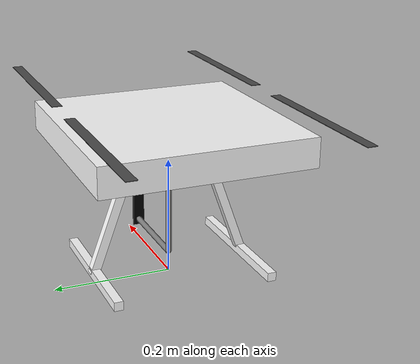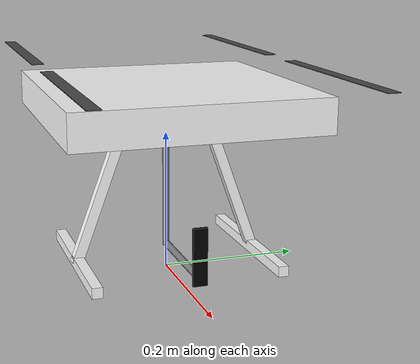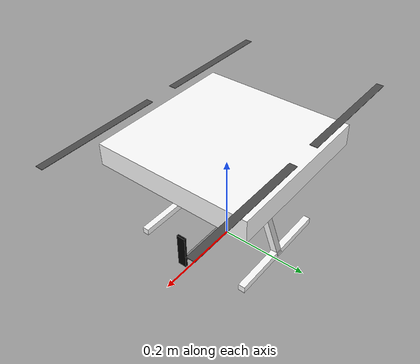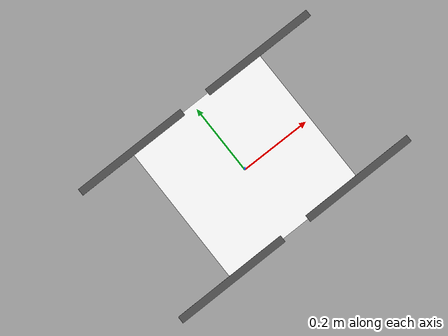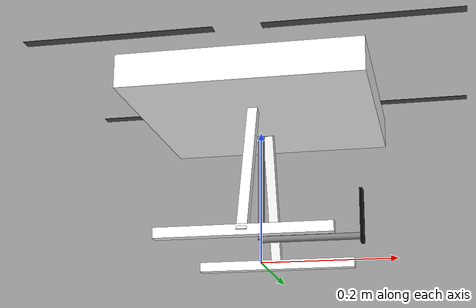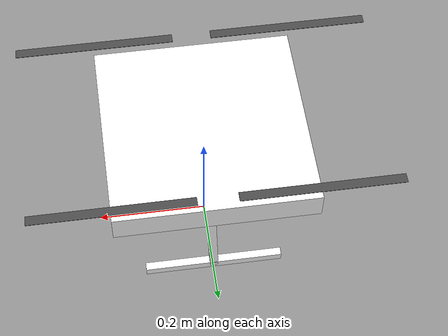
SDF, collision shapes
<?xml version="1.0" encoding="UTF-8"?>
<sdf version='1.9'>
  <model name='x500_flamingo'>
    <pose>0 0 .24 0 0 0</pose>
    <self_collide>false</self_collide>
    <static>false</static>
    <link name="base_link">
      <inertial>
        <mass>2.0</mass>
        <inertia>
          <ixx>0.02166666666666667</ixx>
          <ixy>0</ixy>
          <ixz>0</ixz>
          <iyy>0.02166666666666667</iyy>
          <iyz>0</iyz>
          <izz>0.04000000000000001</izz>
        </inertia>
      </inertial>
      <gravity>true</gravity>
      <velocity_decay/>
      <visual name="base_link_visual">
        <pose>0 0 .025 0 0 3.141592654</pose>
        <geometry>
          <mesh>
            <scale>1 1 1</scale>
            <uri>model://x500/meshes/NXP-HGD-CF.dae</uri>
          </mesh>
        </geometry>
      </visual>
      <visual name="5010_motor_base_0">
        <pose>0.174 0.174 .032 0 0 -.45</pose>
        <geometry>
          <mesh>
            <scale>1 1 1</scale>
            <uri>model://x500/meshes/5010Base.dae</uri>
          </mesh>
        </geometry>
      </visual>
      <visual name="5010_motor_base_1">
        <pose>-0.174 0.174 .032 0 0 -.45</pose>
        <geometry>
          <mesh>
            <scale>1 1 1</scale>
            <uri>model://x500/meshes/5010Base.dae</uri>
          </mesh>
        </geometry>
      </visual>
      <visual name="5010_motor_base_2">
        <pose>0.174 -0.174 .032 0 0 -.45</pose>
        <geometry>
          <mesh>
            <scale>1 1 1</scale>
            <uri>model://x500/meshes/5010Base.dae</uri>
          </mesh>
        </geometry>
      </visual>
      <visual name="5010_motor_base_3">
        <pose>-0.174 -0.174 .032 0 0 -.45</pose>
        <geometry>
          <mesh>
            <scale>1 1 1</scale>
            <uri>model://x500/meshes/5010Base.dae</uri>
          </mesh>
        </geometry>
      </visual>
      <visual name="NXP_FMUK66_FRONT">
        <pose>0.047 .001 .043 1 0 1.57</pose>
        <cast_shadows>false</cast_shadows>
        <geometry>
          <plane>
            <normal>0 0 1</normal>
            <size>.013 .007</size>
          </plane>
        </geometry>
        <material>
          <diffuse>1.0 1.0 1.0</diffuse>
          <specular>1.0 1.0 1.0</specular>
          <pbr>
            <metal>
              <albedo_map>model://x500/materials/textures/nxp.png</albedo_map>
            </metal>
          </pbr>
        </material>
      </visual>
      <visual name="NXP_FMUK66_TOP">
        <pose>-0.023 0 .0515 0 0 -1.57</pose>
        <cast_shadows>false</cast_shadows>
        <geometry>
          <plane>
            <normal>0 0 1</normal>
            <size>.013 .007</size>
          </plane>
        </geometry>
        <material>
          <diffuse>1.0 1.0 1.0</diffuse>
          <specular>1.0 1.0 1.0</specular>
          <pbr>
            <metal>
              <albedo_map>model://x500/materials/textures/nxp.png</albedo_map>
            </metal>
          </pbr>
        </material>
      </visual>
      <visual name="RDDRONE_FMUK66_TOP">
        <pose>-.03 0 .0515 0 0 -1.57</pose>
        <cast_shadows>false</cast_shadows>
        <geometry>
          <plane>
            <normal>0 0 1</normal>
            <size>.032 .0034</size>
          </plane>
        </geometry>
        <material>
          <diffuse>1.0 1.0 1.0</diffuse>
          <specular>1.0 1.0 1.0</specular>
          <pbr>
            <metal>
              <albedo_map>model://x500/materials/textures/rd.png</albedo_map>
            </metal>
          </pbr>
        </material>
      </visual>
      <collision name="base_link_collision_0">
        <pose>0 0 .007 0 0 0</pose>
        <geometry>
          <box>
            <size>0.35355339059327373 0.35355339059327373 0.05</size>
          </box>
        </geometry>
        <surface>
          <contact>
            <ode>
              <min_depth>0.001</min_depth>
              <max_vel>0</max_vel>
            </ode>
          </contact>
          <friction>
            <ode/>
          </friction>
        </surface>
      </collision>
      <collision name="base_link_collision_1">
        <pose>0 -0.098 -.123 -0.35 0 0</pose>
        <geometry>
          <box>
            <size>0.015 0.015 0.21</size>
          </box>
        </geometry>
        <surface>
          <contact>
            <ode>
              <min_depth>0.001</min_depth>
              <max_vel>0</max_vel>
            </ode>
          </contact>
          <friction>
            <ode/>
          </friction>
        </surface>
      </collision>
      <collision name="base_link_collision_2">
        <pose>0 0.098 -.123 0.35 0 0</pose>
        <geometry>
          <box>
            <size>0.015 0.015 0.21</size>
          </box>
        </geometry>
        <surface>
          <contact>
            <ode>
              <min_depth>0.001</min_depth>
              <max_vel>0</max_vel>
            </ode>
          </contact>
          <friction>
            <ode/>
          </friction>
        </surface>
      </collision>
      <collision name="base_link_collision_3">
        <pose>0 -0.132 -.2195 0 0 0</pose>
        <geometry>
          <box>
            <size>0.25 0.015 0.015</size>
          </box>
        </geometry>
        <surface>
          <contact>
            <ode>
              <min_depth>0.001</min_depth>
              <max_vel>0</max_vel>
            </ode>
          </contact>
          <friction>
            <ode/>
          </friction>
        </surface>
      </collision>
      <collision name="base_link_collision_4">
        <pose>0 0.132 -.2195 0 0 0</pose>
        <geometry>
          <box>
            <size>0.25 0.015 0.015</size>
          </box>
        </geometry>
        <surface>
          <contact>
            <ode>
              <min_depth>0.001</min_depth>
              <max_vel>0</max_vel>
            </ode>
          </contact>
          <friction>
            <ode/>
          </friction>
        </surface>
      </collision>
      <sensor name="air_pressure_sensor" type="air_pressure">
        <always_on>1</always_on>
        <update_rate>50</update_rate>
        <air_pressure>
          <pressure>
            <noise type="gaussian">
              <mean>0</mean>
              <stddev>0.01</stddev>
            </noise>
          </pressure>
        </air_pressure>
      </sensor>
      <sensor name="imu_sensor" type="imu">
        <always_on>1</always_on>
        <update_rate>250</update_rate>
      </sensor>
    </link>
    <link name="rotor_0">
      <gravity>true</gravity>
      <self_collide>false</self_collide>
      <velocity_decay/>
      <pose>0.174 -0.174 0.06 0 0 0</pose>
      <inertial>
          <mass>0.016076923076923075</mass>
          <inertia>
            <ixx>3.8464910483993325e-07</ixx>
            <iyy>2.6115851691700804e-05</iyy>
            <izz>2.649858234714004e-05</izz>
          </inertia>
        </inertial>
      <visual name="rotor_0_visual">
        <pose>-0.022 -0.14638461538461536 -0.016 0 0 0</pose>
        <geometry>
          <mesh>
            <scale>0.8461538461538461 0.8461538461538461 0.8461538461538461</scale>
            <uri>model://x500/meshes/1345_prop_ccw.stl</uri>
          </mesh>
        </geometry>
        <material>
          <script>
            <name>Gazebo/DarkGrey</name>
            <uri>file://media/materials/scripts/gazebo.material</uri>
          </script>
        </material>
      </visual>
      <visual name="rotor_0_visual_motor_bell">
        <pose>0 0 -.032 0 0 0</pose>
        <geometry>
          <mesh>
            <scale>1 1 1</scale>
            <uri>model://x500/meshes/5010Bell.dae</uri>
          </mesh>
        </geometry>
      </visual>
      <collision name="rotor_0_collision">
        <pose>0 0 0 0 0 0 </pose>
        <geometry>
          <box>
            <size>0.2792307692307692 0.016923076923076923 0.0008461538461538462</size>
          </box>
        </geometry>
        <surface>
          <contact>
            <ode>
              <min_depth>0.001</min_depth>
              <max_vel>0</max_vel>
            </ode>
          </contact>
          <friction>
            <ode/>
          </friction>
        </surface>
      </collision>
    </link>
    <joint name="rotor_0_joint" type="revolute">
      <parent>base_link</parent>
      <child>rotor_0</child>
      <axis>
        <xyz>0 0 1</xyz>
        <limit>
          <lower>-1e+16</lower>
          <upper>1e+16</upper>
        </limit>
        <dynamics>
          <spring_reference>0</spring_reference>
          <spring_stiffness>0</spring_stiffness>
        </dynamics>
      </axis>
    </joint>
    <link name="rotor_1">
      <gravity>true</gravity>
      <self_collide>false</self_collide>
      <velocity_decay/>
      <pose>-0.174 0.174 0.06 0 0 0</pose>
      <inertial>
          <mass>0.016076923076923075</mass>
          <inertia>
            <ixx>3.8464910483993325e-07</ixx>
            <iyy>2.6115851691700804e-05</iyy>
            <izz>2.649858234714004e-05</izz>
          </inertia>
        </inertial>
      <visual name="rotor_1_visual">
        <pose>-0.022 -0.14638461538461536 -0.016 0 0 0</pose>
        <geometry>
          <mesh>
            <scale>0.8461538461538461 0.8461538461538461 0.8461538461538461</scale>
            <uri>model://x500/meshes/1345_prop_ccw.stl</uri>
          </mesh>
        </geometry>
        <material>
          <script>
            <name>Gazebo/DarkGrey</name>
            <uri>file://media/materials/scripts/gazebo.material</uri>
          </script>
        </material>
      </visual>
      <visual name="rotor_1_visual_motor_top">
        <pose>0 0 -.032 0 0 0</pose>
        <geometry>
          <mesh>
            <scale>1 1 1</scale>
            <uri>model://x500/meshes/5010Bell.dae</uri>
          </mesh>
        </geometry>
      </visual>
      <collision name="rotor_1_collision">
        <pose>0 0 0 0 0 0 </pose>
        <geometry>
          <box>
            <size>0.2792307692307692 0.016923076923076923 0.0008461538461538462</size>
          </box>
        </geometry>
        <surface>
          <contact>
            <ode>
              <min_depth>0.001</min_depth>
              <max_vel>0</max_vel>
            </ode>
          </contact>
          <friction>
            <ode/>
          </friction>
        </surface>
      </collision>
    </link>
    <joint name="rotor_1_joint" type="revolute">
      <parent>base_link</parent>
      <child>rotor_1</child>
      <axis>
        <xyz>0 0 1</xyz>
        <limit>
          <lower>-1e+16</lower>
          <upper>1e+16</upper>
        </limit>
        <dynamics>
          <spring_reference>0</spring_reference>
          <spring_stiffness>0</spring_stiffness>
        </dynamics>
      </axis>
    </joint>
    <link name="rotor_2">
      <gravity>true</gravity>
      <self_collide>false</self_collide>
      <velocity_decay/>
      <pose>0.174 0.174 0.06 0 0 0</pose>
      <inertial>
          <mass>0.016076923076923075</mass>
          <inertia>
            <ixx>3.8464910483993325e-07</ixx>
            <iyy>2.6115851691700804e-05</iyy>
            <izz>2.649858234714004e-05</izz>
          </inertia>
        </inertial>
      <visual name="rotor_2_visual">
        <pose>-0.022 -0.14638461538461536 -0.016 0 0 0</pose>
        <geometry>
          <mesh>
            <scale>0.8461538461538461 0.8461538461538461 0.8461538461538461</scale>
            <uri>model://x500/meshes/1345_prop_cw.stl</uri>
          </mesh>
        </geometry>
        <material>
          <script>
            <name>Gazebo/DarkGrey</name>
            <uri>file://media/materials/scripts/gazebo.material</uri>
          </script>
        </material>
      </visual>
      <visual name="rotor_2_visual_motor_top">
        <pose>0 0 -.032 0 0 0</pose>
        <geometry>
          <mesh>
            <scale>1 1 1</scale>
            <uri>model://x500/meshes/5010Bell.dae</uri>
          </mesh>
        </geometry>
      </visual>
      <collision name="rotor_2_collision">
        <pose>0 0 0 0 0 0 </pose>
        <geometry>
          <box>
            <size>0.2792307692307692 0.016923076923076923 0.0008461538461538462</size>
          </box>
        </geometry>
        <surface>
          <contact>
            <ode>
              <min_depth>0.001</min_depth>
              <max_vel>0</max_vel>
            </ode>
          </contact>
          <friction>
            <ode/>
          </friction>
        </surface>
      </collision>
    </link>
    <joint name="rotor_2_joint" type="revolute">
      <parent>base_link</parent>
      <child>rotor_2</child>
      <axis>
        <xyz>0 0 1</xyz>
        <limit>
          <lower>-1e+16</lower>
          <upper>1e+16</upper>
        </limit>
        <dynamics>
          <spring_reference>0</spring_reference>
          <spring_stiffness>0</spring_stiffness>
        </dynamics>
      </axis>
    </joint>
    <link name="rotor_3">
      <gravity>true</gravity>
      <self_collide>false</self_collide>
      <velocity_decay/>
      <pose>-0.174 -0.174 0.06 0 0 0</pose>
      <inertial>
          <mass>0.016076923076923075</mass>
          <inertia>
            <ixx>3.8464910483993325e-07</ixx>
            <iyy>2.6115851691700804e-05</iyy>
            <izz>2.649858234714004e-05</izz>
          </inertia>
        </inertial>
      <visual name="rotor_3_visual">
        <pose>-0.022 -0.14638461538461536 -0.016 0 0 0</pose>
        <geometry>
          <mesh>
            <scale>0.8461538461538461 0.8461538461538461 0.8461538461538461</scale>
            <uri>model://x500/meshes/1345_prop_cw.stl</uri>
          </mesh>
        </geometry>
        <material>
          <script>
            <name>Gazebo/DarkGrey</name>
            <uri>file://media/materials/scripts/gazebo.material</uri>
          </script>
        </material>
      </visual>
      <visual name="rotor_3_visual_motor_top">
        <pose>0 0 -.032 0 0 0</pose>
        <geometry>
          <mesh>
            <scale>1 1 1</scale>
            <uri>model://x500/meshes/5010Bell.dae</uri>
          </mesh>
        </geometry>
      </visual>
      <collision name="rotor_3_collision">
        <pose>0 0 0 0 0 0 </pose>
        <geometry>
          <box>
            <size>0.2792307692307692 0.016923076923076923 0.0008461538461538462</size>
          </box>
        </geometry>
        <surface>
          <contact>
            <ode>
              <min_depth>0.001</min_depth>
              <max_vel>0</max_vel>
            </ode>
          </contact>
          <friction>
            <ode/>
          </friction>
        </surface>
      </collision>
    </link>
    <joint name="rotor_3_joint" type="revolute">
      <parent>base_link</parent>
      <child>rotor_3</child>
      <axis>
        <xyz>0 0 1</xyz>
        <limit>
          <lower>-1e+16</lower>
          <upper>1e+16</upper>
        </limit>
        <dynamics>
          <spring_reference>0</spring_reference>
          <spring_stiffness>0</spring_stiffness>
        </dynamics>
      </axis>
    </joint>

    <!--Added for bird diverter installation-->

    <include merge='true'>
      <uri>model://OakD-Lite</uri>
      <pose>.12 .03 0 0 0 0</pose>
    </include>
    <joint name="CameraJoint" type="fixed">
      <parent>base_link</parent>
      <child>OakD-Lite/base_link</child>
      <pose relative_to="base_link">.12 .03 0 0 0 0</pose>
    </joint>

    <link name='arm_link1'>
    <pose>0 0 -0.125 0 0 3.14</pose>
    <inertial>
        <mass>0.002</mass>
         <inertia>
            <ixx>3.8464910483993325e-07</ixx>
            <iyy>2.6115851691700804e-05</iyy>
            <izz>2.649858234714004e-05</izz>
          </inertia>
    </inertial>
        <visual name='visual'>
        <geometry>
            <cylinder>
                <radius>0.005</radius>
                <length>0.16</length>
            </cylinder>
        </geometry>
        <material>
         <ambient>0.5 0.5 0.5 1</ambient>
	<diffuse>0.5 0.5 0.5 1</diffuse>
	<specular>0.5 0.5 0.5 1</specular>
        </material>
    </visual>
    <collision name='collision'>
        <geometry>
            <cylinder>
                <radius>0.005</radius>
                <length>0.16</length>
            </cylinder>
        </geometry>
    </collision>
    </link>

<joint name='base_arm_joint' type='fixed'>
  <pose relative_to="base_link">0 0 -0.05 0 0 0</pose>
    <parent>base_link</parent>
    <child>arm_link1</child>
</joint>

<link name='arm_link2'>
    <pose relative_to="arm_link1">-0.075 0 -0.08 0 1.5707 0</pose>
    <inertial>
        <mass>0.002</mass>
         <inertia>
            <ixx>3.8464910483993325e-07</ixx>
            <iyy>2.6115851691700804e-05</iyy>
            <izz>2.649858234714004e-05</izz>
          </inertia>
    </inertial>
        <visual name='visual'>
        <geometry>
            <cylinder>
                <radius>0.005</radius>
                <length>0.15</length>
            </cylinder>
        </geometry>
        <material>
            <ambient>0.5 0.5 0.5 1</ambient>
<diffuse>0.5 0.5 0.5 1</diffuse>
<specular>0.5 0.5 0.5 1</specular>
        </material>
    </visual>
    <collision name='collision'>
        <geometry>
            <cylinder>
                <radius>0.005</radius>
                <length>0.15</length>
            </cylinder>
        </geometry>
    </collision>
    </link>

<joint name='link1_link2_joint' type='revolute'>
    <pose relative_to="arm_link1">0 0 -0.08 0 0 0</pose>
    <parent>arm_link1</parent>
    <child>arm_link2</child>
    <axis>
        <xyz expressed_in='__model__'>0 1 0</xyz>
        <limit>
            <lower>-1.5707</lower>
            <upper>1.5707</upper>
        </limit>
    </axis>
</joint>

<link name='arm_link3'>
        <pose>0.15 0 -0.175 1.5707 1.5707 0</pose>
    <inertial>
        <mass>0.001</mass>
        <inertia>
            <ixx>1.0e-08</ixx>
            <iyy>1.0e-08</iyy>
            <izz>1.0e-08</izz>
        </inertia>
    </inertial>
    <visual name='visual'>
        <geometry>
            <box>
                <size>0.08 0.005 0.02</size>
            </box>
        </geometry>
        <material>
            <ambient>0.0 0.0 0.0 1</ambient>
	<diffuse>0.0 0.0 0.0 1</diffuse>
	<specular>0.0 0.0 0.0 1</specular>

        </material>
    </visual>
    <collision name='collisionlink3'>
        <geometry>
            <box>
                <size>0.08 0.005 0.02</size>
            </box>
        </geometry>
    </collision>

</link>

<joint name='link2_link3_joint' type='revolute'>
    <pose relative_to="arm_link2">0 0 -0.075 0 0 0</pose>
    <parent>arm_link2</parent>
    <child>arm_link3</child>
    <axis>
        <xyz>0 1 0</xyz> <!-- Rotazione lungo Y -->
        <limit>
            <lower>-1.4</lower>  <!-- Posizione iniziale -->
            <upper>0</upper>  <!-- 90° (in radianti) -->
            <effort>100</effort> <!-- Soglia di forza per far ruotare il giunto -->
            <velocity>2</velocity>
        </limit>
        <dynamics>
            <damping>0.05</damping>
            <friction>0.05</friction>
        </dynamics>
    </axis>

    <!-- Sensore di forza per rilevare il contatto -->
    <sensor name="force_torque_sensor" type="force_torque">
        <pose relative_to="arm_link3">0 0 0 0 0 0</pose>
        <always_on>true</always_on>
        <update_rate>50</update_rate>
        <plugin name="gz::sim::systems::ForceTorque"
                filename="/usr/lib/x86_64-linux-gnu/gz-sim-7/plugins/libgz-sim7-forcetorque-system.so"/>
    </sensor>
</joint>

 <plugin
 filename="gz-sim-joint-controller-system"
 name="gz::sim::systems::JointController">
 <joint_name>link2_link3_joint</joint_name>
 <initial_velocity>1.0</initial_velocity>
</plugin>

  <plugin
        filename="gz-sim7-pose-publisher-system"
        name="gz::sim::systems::PosePublisher">
    <publish_link_pose>true</publish_link_pose>
    <publish_model_pose>true</publish_model_pose>  <!-- PUBBLICA LA POSA ASSOLUTA DEL MODELLO -->
    <publish_collision_pose>true</publish_collision_pose>
    <publish_visual_pose>true</publish_visual_pose>
    <publish_nested_model_pose>false</publish_nested_model_pose>
    <update_frequency>30</update_frequency>
      </plugin>

    <plugin
      filename="gz-sim-odometry-publisher-system"
      name="gz::sim::systems::OdometryPublisher">
      <dimensions>3</dimensions>
      <update_rate>250</update_rate>
      <odom_publish_frequency>1000</odom_publish_frequency>
    </plugin>
    <plugin
      filename="gz-sim-pose-publisher-system"
      name="gz::sim::systems::PosePublisher">
      <publish_link_pose>true</publish_link_pose>
      <publish_collision_pose>false</publish_collision_pose>
      <publish_visual_pose>false</publish_visual_pose>
      <publish_nested_model_pose>false</publish_nested_model_pose>
      </plugin>

   <plugin filename="gz-sim-multicopter-motor-model-system" name="gz::sim::systems::MulticopterMotorModel">
      <jointName>rotor_0_joint</jointName>
      <linkName>rotor_0</linkName>
      <turningDirection>ccw</turningDirection>
      <timeConstantUp>0.0125</timeConstantUp>
      <timeConstantDown>0.025</timeConstantDown>
      <maxRotVelocity>1000.0</maxRotVelocity>
      <motorConstant>8.54858e-06</motorConstant>
      <momentConstant>0.016</momentConstant>
      <commandSubTopic>command/motor_speed</commandSubTopic>
      <motorNumber>0</motorNumber>
      <rotorDragCoefficient>8.06428e-05</rotorDragCoefficient>
      <rollingMomentCoefficient>1e-06</rollingMomentCoefficient>
      <rotorVelocitySlowdownSim>10</rotorVelocitySlowdownSim>
      <motorType>velocity</motorType>
    </plugin>
    <plugin filename="gz-sim-multicopter-motor-model-system" name="gz::sim::systems::MulticopterMotorModel">
      <jointName>rotor_1_joint</jointName>
      <linkName>rotor_1</linkName>
      <turningDirection>ccw</turningDirection>
      <timeConstantUp>0.0125</timeConstantUp>
      <timeConstantDown>0.025</timeConstantDown>
      <maxRotVelocity>1000.0</maxRotVelocity>
      <motorConstant>8.54858e-06</motorConstant>
      <momentConstant>0.016</momentConstant>
      <commandSubTopic>command/motor_speed</commandSubTopic>
      <motorNumber>1</motorNumber>
      <rotorDragCoefficient>8.06428e-05</rotorDragCoefficient>
      <rollingMomentCoefficient>1e-06</rollingMomentCoefficient>
      <rotorVelocitySlowdownSim>10</rotorVelocitySlowdownSim>
      <motorType>velocity</motorType>
    </plugin>
    <plugin filename="gz-sim-multicopter-motor-model-system" name="gz::sim::systems::MulticopterMotorModel">
      <jointName>rotor_2_joint</jointName>
      <linkName>rotor_2</linkName>
      <turningDirection>cw</turningDirection>
      <timeConstantUp>0.0125</timeConstantUp>
      <timeConstantDown>0.025</timeConstantDown>
      <maxRotVelocity>1000.0</maxRotVelocity>
      <motorConstant>8.54858e-06</motorConstant>
      <momentConstant>0.016</momentConstant>
      <commandSubTopic>command/motor_speed</commandSubTopic>
      <motorNumber>2</motorNumber>
      <rotorDragCoefficient>8.06428e-05</rotorDragCoefficient>
      <rollingMomentCoefficient>1e-06</rollingMomentCoefficient>
      <rotorVelocitySlowdownSim>10</rotorVelocitySlowdownSim>
      <motorType>velocity</motorType>
    </plugin>
    <plugin filename="gz-sim-multicopter-motor-model-system" name="gz::sim::systems::MulticopterMotorModel">
      <jointName>rotor_3_joint</jointName>
      <linkName>rotor_3</linkName>
      <turningDirection>cw</turningDirection>
      <timeConstantUp>0.0125</timeConstantUp>
      <timeConstantDown>0.025</timeConstantDown>
      <maxRotVelocity>1000.0</maxRotVelocity>
      <motorConstant>8.54858e-06</motorConstant>
      <momentConstant>0.016</momentConstant>
      <commandSubTopic>command/motor_speed</commandSubTopic>
      <motorNumber>3</motorNumber>
      <rotorDragCoefficient>8.06428e-05</rotorDragCoefficient>
      <rollingMomentCoefficient>1e-06</rollingMomentCoefficient>
      <rotorVelocitySlowdownSim>10</rotorVelocitySlowdownSim>
      <motorType>velocity</motorType>
    </plugin>
  </model>
</sdf>

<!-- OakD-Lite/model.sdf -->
<sdf version='1.9'>
  <model name='OakD-Lite'>
    <pose>0 0 0 0 0 0</pose>
    <self_collide>false</self_collide>
    <static>false</static>
    <link name="OakD-Lite/base_link">
      <inertial>
        <pose>0.00358 -0.03 .014 0 0 0</pose>
        <mass>0.061</mass>
        <inertia>
          <ixx>0.0000460804</ixx>
          <ixy>0</ixy>
          <ixz>0</ixz>
          <iyy>0.0000055421</iyy>
          <iyz>0</iyz>
          <izz>0.0000436519</izz>
        </inertia>
      </inertial>
      <visual name="OakD-Lite/visual">
        <pose>0 0 0 0 0 0</pose>
        <geometry>
          <mesh>
            <scale>1 1 1</scale>
            <uri>model://OakD-Lite/meshes/OakDLite.dae</uri>
          </mesh>
        </geometry>
      </visual>
      <collision name="OakD-Lite/collision">
        <pose>0.00358 -0.03 .014 0 0 0</pose>
        <geometry>
          <box>
            <size>0.0175 0.091 0.028</size>
          </box>
        </geometry>
      </collision>
      <sensor name="IMX214" type="camera">
        <pose>0.01233 -0.03 .01878 0 0 0</pose>
        <camera>
          <horizontal_fov>1.204</horizontal_fov>
          <image>
            <width>640</width>
            <height>480</height>
          </image>
          <clip>
            <near>0.1</near>
            <far>100</far>
          </clip>
        </camera>
        <always_on>1</always_on>
        <update_rate>30</update_rate>
        <visualize>true</visualize>
        <topic>camera</topic>
      </sensor>
      <sensor name="StereoOV7251" type="depth_camera">
        <pose>0.01233 -0.03 .01878 0 0 0</pose>
        <camera>
          <horizontal_fov>1.274</horizontal_fov>
          <image>
            <width>640</width>
            <height>480</height>
            <format>R_FLOAT32</format>
          </image>
          <clip>
            <near>0.2</near>
            <far>19.1</far>
          </clip>
        </camera>
        <always_on>1</always_on>
        <update_rate>30</update_rate>
        <visualize>true</visualize>
        <topic>depth_camera</topic>
      </sensor>
      <gravity>true</gravity>
      <velocity_decay/>
    </link>
  </model>
</sdf>
